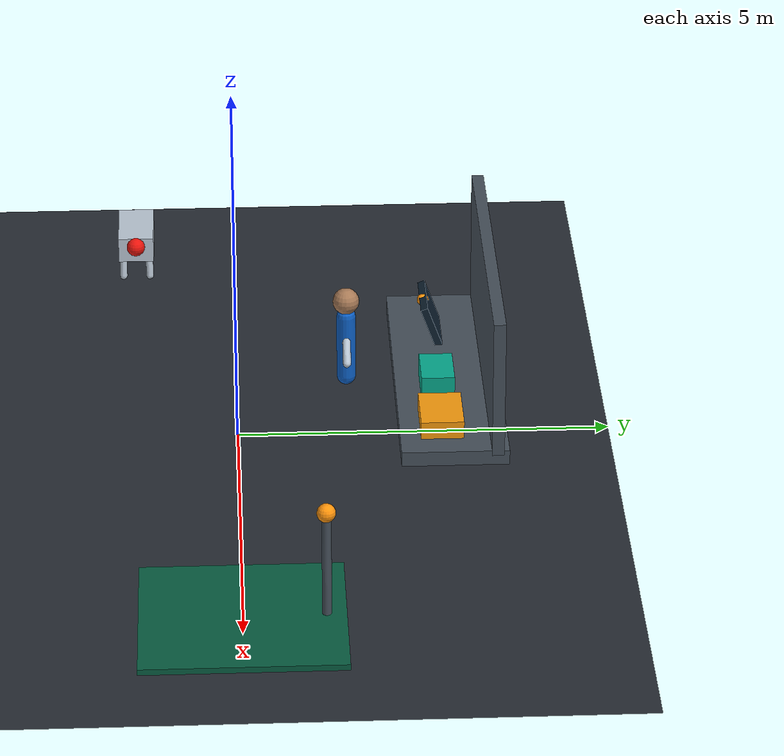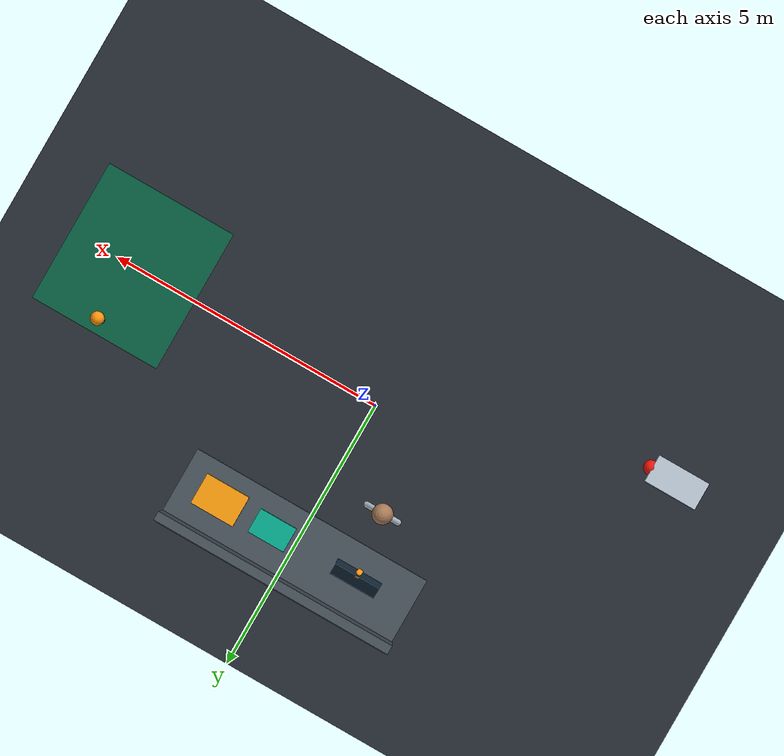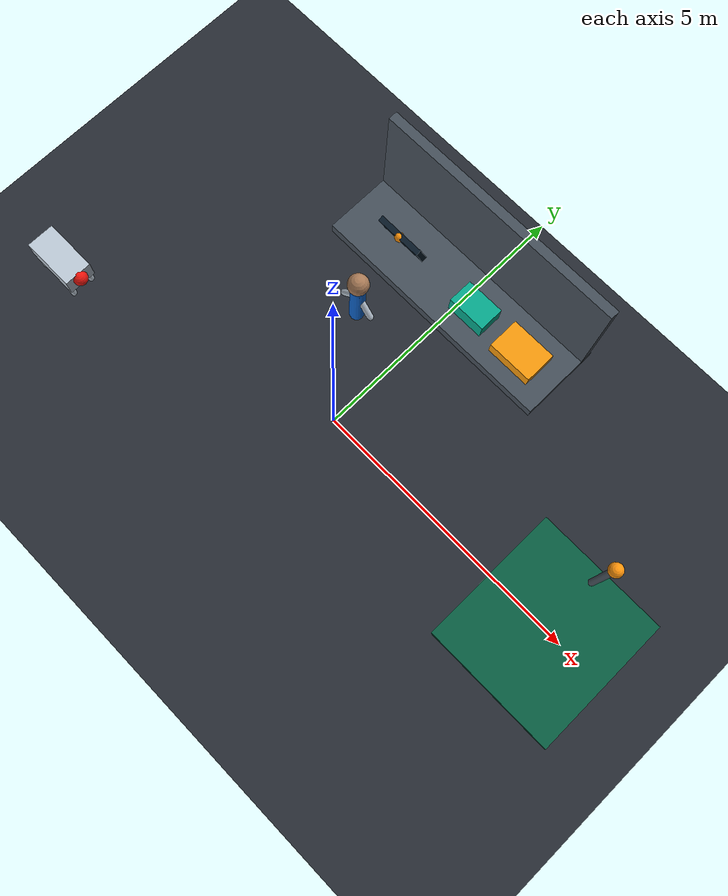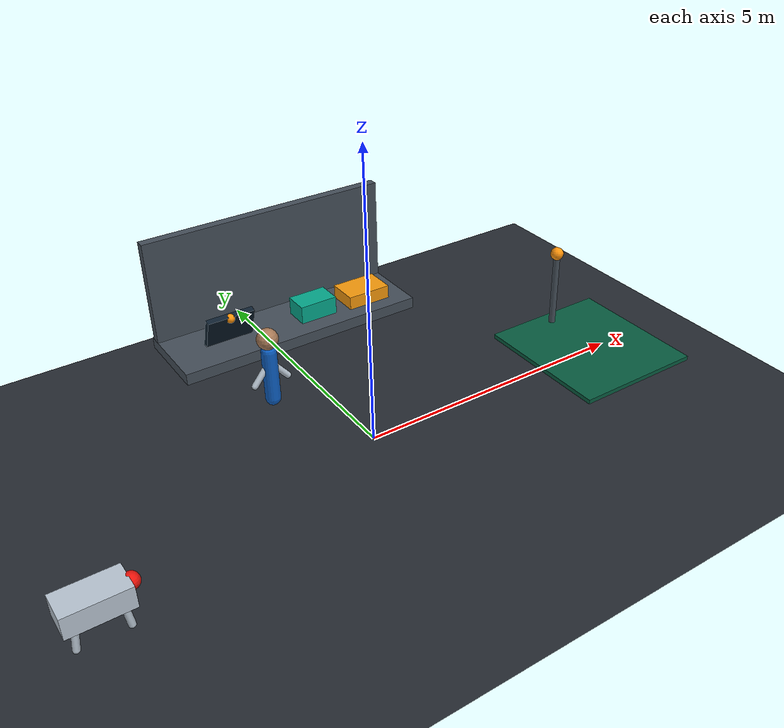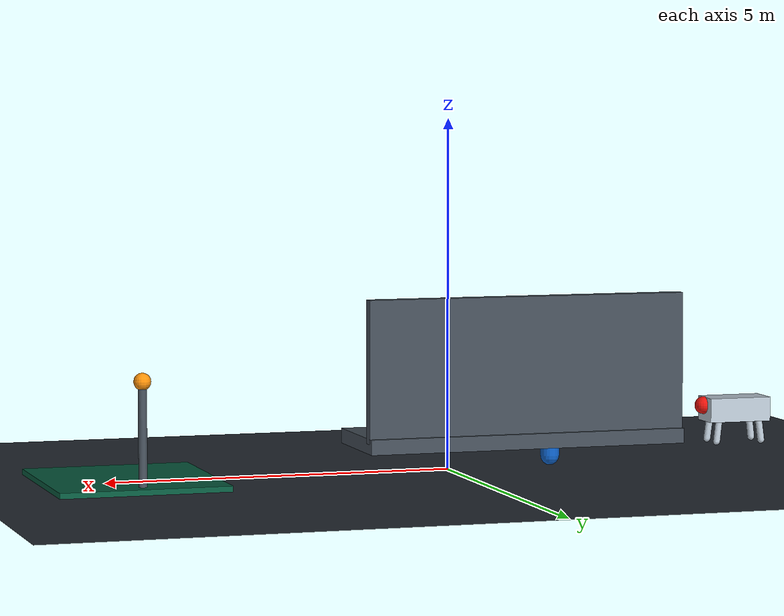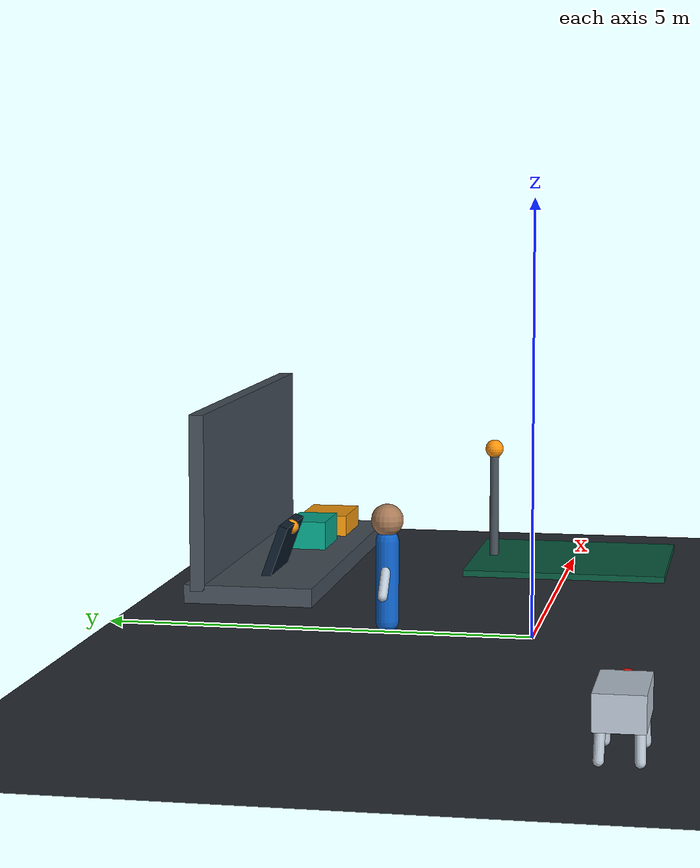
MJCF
<mujoco model="robotics_field_support_service_bay_v1">
  <compiler angle="degree"/>
  <option timestep="0.01" gravity="0 0 -9.81"/>
  <statistic center="0 0 1" extent="8"/>
  <visual><global offwidth="960" offheight="540"/><headlight ambient="0.42 0.42 0.42" diffuse="0.84 0.84 0.84"/></visual>
  <default><geom contype="0" conaffinity="0"/></default>
  <asset>
    <texture name="floor_tex" type="2d" builtin="checker" rgb1="0.12 0.14 0.17" rgb2="0.18 0.20 0.23" width="256" height="256"/>
    <material name="floor" texture="floor_tex" texrepeat="8 6"/>
    <material name="bench" rgba="0.27 0.31 0.35 1"/>
    <material name="robot" rgba="0.73 0.78 0.83 1"/>
    <material name="teal" rgba="0.02 0.66 0.55 1"/>
    <material name="amber" rgba="1.0 0.58 0.04 1" emission="0.12"/>
    <material name="red" rgba="0.92 0.08 0.05 1" emission="0.15"/>
  </asset>
  <worldbody>
    <light pos="-1 -2 7" dir="0.1 0.1 -1"/>
    <geom type="plane" size="7 5 0.1" material="floor" contype="1" conaffinity="1"/>
    <camera name="overview" pos="-9 -10 6.5" xyaxes="0.74 -0.67 0 0.36 0.40 0.84"/>
    <camera name="diagnostic" pos="-2 -7 3.6" xyaxes="0.98 -0.20 0 0.08 0.39 0.92"/>
    <camera name="verification" pos="7 -6 4.0" xyaxes="0.62 0.78 0 -0.35 0.28 0.89"/>
    <geom name="service_bench" type="box" pos="0 2.8 0.82" size="2.2 0.70 0.10" material="bench"/>
    <geom type="box" pos="0 3.35 1.8" size="2.2 0.08 0.95" material="bench"/>
    <geom name="laptop" type="box" pos="-1.15 2.65 1.18" size="0.42 0.05 0.30" rgba="0.05 0.12 0.18 1" euler="20 0 0"/>
    <geom name="case_light" type="sphere" pos="-1.15 2.55 1.40" size="0.08" material="amber"/>
    <geom name="replacement_module" type="box" pos="0.45 2.65 1.08" size="0.34 0.22 0.16" material="teal"/>
    <geom name="tool_case" type="box" pos="1.45 2.65 1.04" size="0.40 0.28 0.12" rgba="0.96 0.60 0.05 1"/>
    <geom type="box" pos="4.7 0 0.04" size="1.2 1.3 0.04" rgba="0.03 0.36 0.25 1"/>
    <geom name="test_light" type="cylinder" pos="4.7 1.05 0.72" size="0.06 0.72" material="bench"/>
    <geom name="test_beacon" type="sphere" pos="4.7 1.05 1.52" size="0.12" material="amber"/>

    <body name="service_robot" mocap="true" pos="-5 -1.4 0">
      <geom type="box" pos="0 0 0.55" size="0.48 0.25 0.18" material="robot"/>
      <geom name="service_sensor" type="sphere" pos="0.50 0 0.61" size="0.13" material="red"/>
      <geom type="capsule" fromto="-0.31 -0.18 0.48 -0.36 -0.19 0.08" size="0.052" material="robot"/>
      <geom type="capsule" fromto="-0.31 0.18 0.48 -0.36 0.19 0.08" size="0.052" material="robot"/>
      <geom type="capsule" fromto="0.31 -0.18 0.48 0.36 -0.19 0.08" size="0.052" material="robot"/>
      <geom type="capsule" fromto="0.31 0.18 0.48 0.36 0.19 0.08" size="0.052" material="robot"/>
    </body>
    <body name="technician" mocap="true" pos="-1.0 1.5 0">
      <geom type="capsule" fromto="0 0 0.35 0 0 1.25" size="0.13" rgba="0.05 0.38 0.78 1"/>
      <geom type="sphere" pos="0 0 1.48" size="0.18" rgba="0.66 0.48 0.34 1"/>
      <geom type="capsule" fromto="0 0 1.05 -0.30 0 0.68" size="0.055" material="robot"/>
      <geom type="capsule" fromto="0 0 1.05 0.30 0 0.68" size="0.055" material="robot"/>
    </body>
  </worldbody>
</mujoco>
